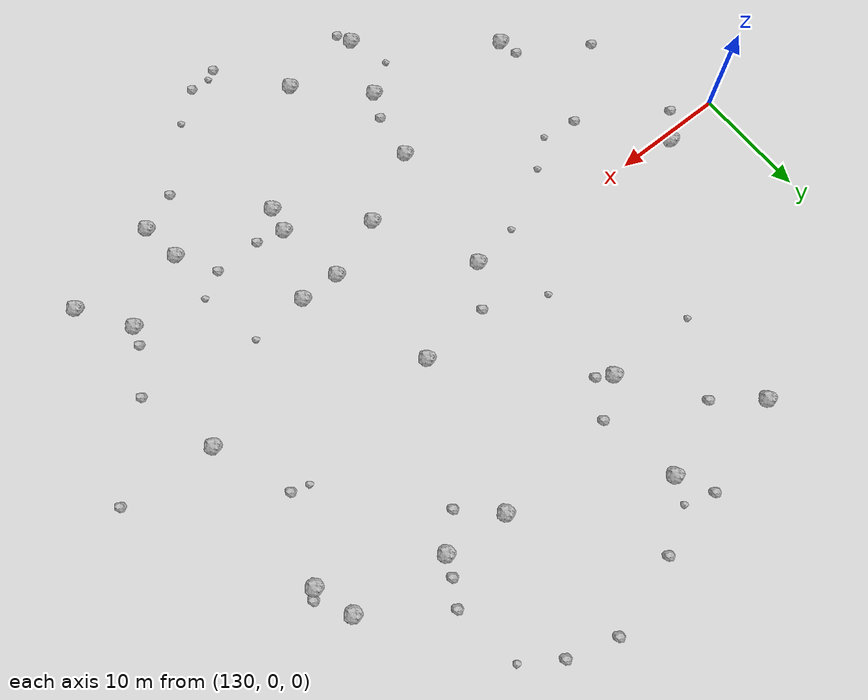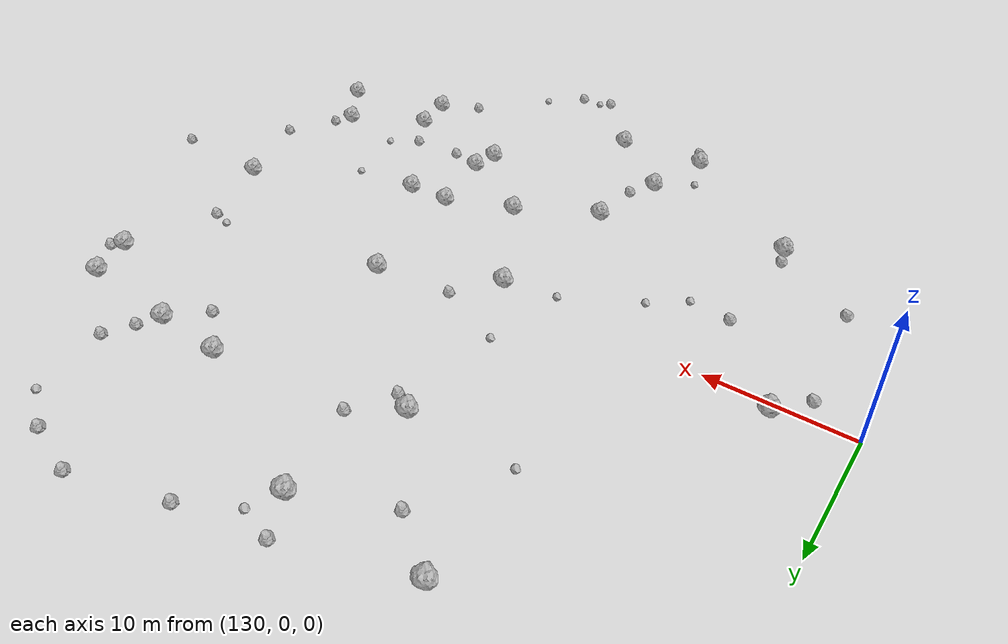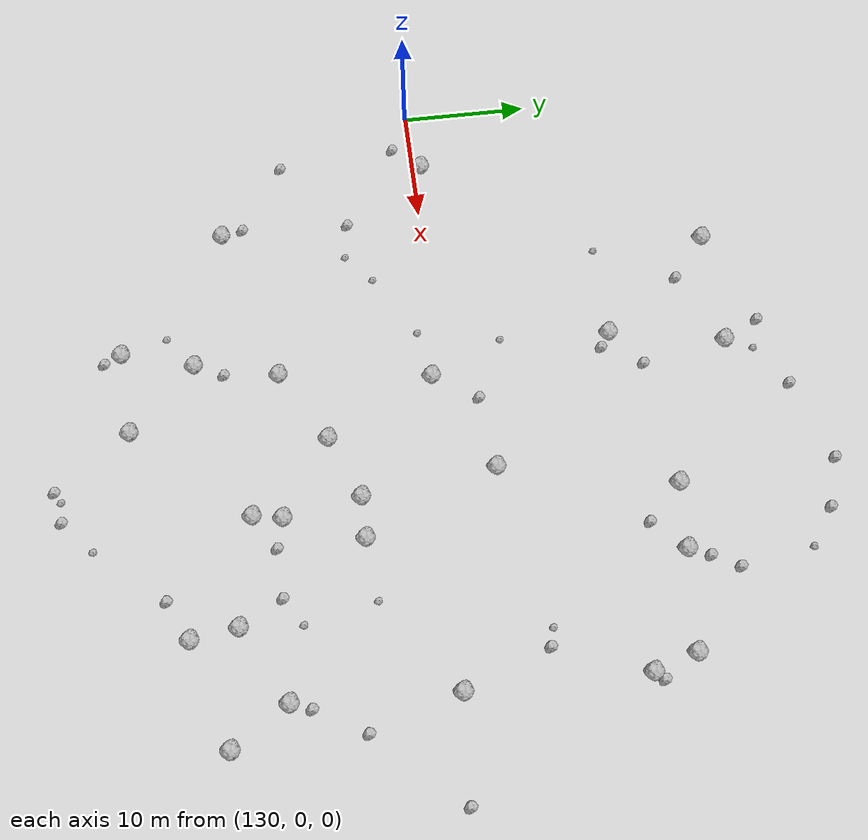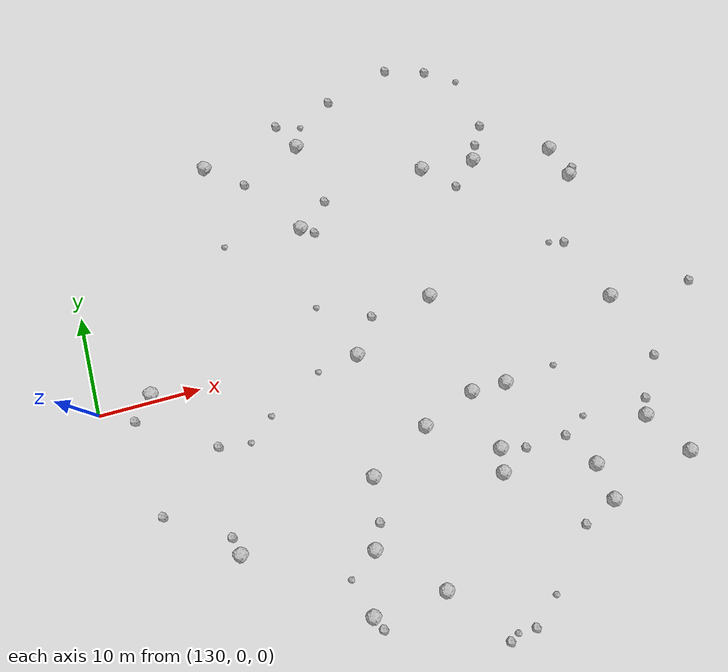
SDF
<sdf version="1.6">
 <world name="default">
  <include><uri>model://sun</uri></include>
  <model name="rock1_4_2">
   <include><uri>model://rock1</uri><pose>166.5630072665513 -13.079276418080276 0.5 0 0 0</pose></include>
  </model>
  <model name="rock1_4_3">
   <include><uri>model://rock1</uri><pose>140.56834922653667 -16.158866072498483 0.5 0 0 0</pose></include>
  </model>
  <model name="rock1_4_4">
   <include><uri>model://rock1</uri><pose>168.91071787296883 -7.137942485076255 0.5 0 0 0</pose></include>
  </model>
  <model name="rock1_4_5">
   <include><uri>model://rock1</uri><pose>174.89400930639476 -16.817843921239472 0.5 0 0 0</pose></include>
  </model>
  <model name="rock1_4_6">
   <include><uri>model://rock1</uri><pose>152.63541614075245 -18.97747056050652 0.5 0 0 0</pose></include>
  </model>
  <model name="rock1_4_7">
   <include><uri>model://rock1</uri><pose>145.29365056669974 22.498672437877623 0.5 0 0 0</pose></include>
  </model>
  <model name="rock1_4_8">
   <include><uri>model://rock1</uri><pose>175.44288637745743 -20.36355261090216 0.5 0 0 0</pose></include>
  </model>
  <model name="rock1_4_9">
   <include><uri>model://rock1</uri><pose>180.98657384970176 -13.661822282428403 0.5 0 0 0</pose></include>
  </model>
  <model name="rock1_4_10">
   <include><uri>model://rock1</uri><pose>165.48063055884876 -7.136984117840925 0.5 0 0 0</pose></include>
  </model>
  <model name="rock1_4_11">
   <include><uri>model://rock1</uri><pose>155.13577216665604 22.442489114119454 0.5 0 0 0</pose></include>
  </model>
  <model name="rock1_4_12">
   <include><uri>model://rock1</uri><pose>166.15826284284765 -15.322449395754834 0.5 0 0 0</pose></include>
  </model>
  <model name="rock1_4_13">
   <include><uri>model://rock1</uri><pose>155.6898528324413 -0.7520256396828486 0.5 0 0 0</pose></include>
  </model>
  <model name="rock1_4_14">
   <include><uri>model://rock1</uri><pose>164.17049573108068 3.1894222953283133 0.5 0 0 0</pose></include>
  </model>
  <model name="rock1_4_15">
   <include><uri>model://rock1</uri><pose>135.42149149534436 0.6705530813060321 0.5 0 0 0</pose></include>
  </model>
  <model name="rock1_4_16">
   <include><uri>model://rock1</uri><pose>158.02272643480867 -24.12296321911017 0.5 0 0 0</pose></include>
  </model>
  <model name="rock1_4_17">
   <include><uri>model://rock1</uri><pose>150.9934369263861 -24.563707882462186 0.5 0 0 0</pose></include>
  </model>
  <model name="rock1_4_18">
   <include><uri>model://rock1</uri><pose>160.2475247718266 -9.19374458919702 0.5 0 0 0</pose></include>
  </model>
  <model name="rock1_4_19">
   <include><uri>model://rock1</uri><pose>181.5736555263539 -1.4863561609047515 0.5 0 0 0</pose></include>
  </model>
  <model name="rock1_4_20">
   <include><uri>model://rock1</uri><pose>167.12595949109334 16.587744518566844 0.5 0 0 0</pose></include>
  </model>
  <model name="rock1_4_21">
   <include><uri>model://rock1</uri><pose>154.20569799973822 -12.522556110720767 0.5 0 0 0</pose></include>
  </model>
  <model name="rock1_4_22">
   <include><uri>model://rock1</uri><pose>183.89886762327959 -17.949325484788456 0.5 0 0 0</pose></include>
  </model>
  <model name="rock1_4_23">
   <include><uri>model://rock1</uri><pose>153.4164302906874 13.497761531913824 0.5 0 0 0</pose></include>
  </model>
  <model name="rock1_4_24">
   <include><uri>model://rock1</uri><pose>180.63099220064464 15.352190946679578 0.5 0 0 0</pose></include>
  </model>
  <model name="rock1_4_25">
   <include><uri>model://rock1</uri><pose>172.56150771840635 16.17404543910672 0.5 0 0 0</pose></include>
  </model>
  <model name="rock1_4_26">
   <include><uri>model://rock1</uri><pose>181.71690391804822 12.014889700642811 0.5 0 0 0</pose></include>
  </model>
  <model name="rock2_4_0">
   <include><uri>model://rock2</uri><pose>159.5608978548677 26.654744361003274 0.3 0 0 0</pose></include>
  </model>
  <model name="rock2_4_1">
   <include><uri>model://rock2</uri><pose>153.53734373882415 25.34655612420547 0.3 0 0 0</pose></include>
  </model>
  <model name="rock2_4_2">
   <include><uri>model://rock2</uri><pose>134.2268121161367 -10.952626449911971 0.3 0 0 0</pose></include>
  </model>
  <model name="rock2_4_3">
   <include><uri>model://rock2</uri><pose>133.35818518565412 -1.4953043359957796 0.3 0 0 0</pose></include>
  </model>
  <model name="rock2_4_4">
   <include><uri>model://rock2</uri><pose>181.53502679946294 -12.098988187889944 0.3 0 0 0</pose></include>
  </model>
  <model name="rock2_4_5">
   <include><uri>model://rock2</uri><pose>182.2997752515967 12.734898774759444 0.3 0 0 0</pose></include>
  </model>
  <model name="rock2_4_6">
   <include><uri>model://rock2</uri><pose>140.0921640319749 -14.449597649349977 0.3 0 0 0</pose></include>
  </model>
  <model name="rock2_4_7">
   <include><uri>model://rock2</uri><pose>140.61169356478135 -5.931658162905787 0.3 0 0 0</pose></include>
  </model>
  <model name="rock2_4_8">
   <include><uri>model://rock2</uri><pose>183.77478591312118 -8.322843649198678 0.3 0 0 0</pose></include>
  </model>
  <model name="rock2_4_9">
   <include><uri>model://rock2</uri><pose>189.74203621007968 -2.000173430003123 0.3 0 0 0</pose></include>
  </model>
  <model name="rock2_4_10">
   <include><uri>model://rock2</uri><pose>172.93052881051946 -13.52308831540562 0.3 0 0 0</pose></include>
  </model>
  <model name="rock2_4_11">
   <include><uri>model://rock2</uri><pose>153.663100802888 -16.712678080962576 0.3 0 0 0</pose></include>
  </model>
  <model name="rock2_4_12">
   <include><uri>model://rock2</uri><pose>166.35898298889114 28.67836374918818 0.3 0 0 0</pose></include>
  </model>
  <model name="rock2_4_13">
   <include><uri>model://rock2</uri><pose>173.23560943825242 17.810763127729963 0.3 0 0 0</pose></include>
  </model>
  <model name="rock2_4_14">
   <include><uri>model://rock2</uri><pose>148.872771652947 19.71501977251266 0.3 0 0 0</pose></include>
  </model>
  <model name="rock2_4_15">
   <include><uri>model://rock2</uri><pose>164.9490878331893 -29.316567497542486 0.3 0 0 0</pose></include>
  </model>
  <model name="rock2_4_16">
   <include><uri>model://rock2</uri><pose>170.03122751186532 13.864355954301146 0.3 0 0 0</pose></include>
  </model>
  <model name="rock2_4_17">
   <include><uri>model://rock2</uri><pose>172.18429727409284 -21.875443124451788 0.3 0 0 0</pose></include>
  </model>
  <model name="rock2_4_18">
   <include><uri>model://rock2</uri><pose>170.4216601348277 27.430129834363207 0.3 0 0 0</pose></include>
  </model>
  <model name="rock2_4_19">
   <include><uri>model://rock2</uri><pose>156.4530962774487 15.782460176285348 0.3 0 0 0</pose></include>
  </model>
  <model name="rock2_4_20">
   <include><uri>model://rock2</uri><pose>162.36729094002877 -29.83130429608407 0.3 0 0 0</pose></include>
  </model>
  <model name="rock2_4_21">
   <include><uri>model://rock2</uri><pose>154.62367325621256 12.743919389714797 0.3 0 0 0</pose></include>
  </model>
  <model name="rock2_4_22">
   <include><uri>model://rock2</uri><pose>168.9276613439473 -13.647309096777896 0.3 0 0 0</pose></include>
  </model>
  <model name="rock2_4_23">
   <include><uri>model://rock2</uri><pose>178.91616789787957 5.124326677552887 0.3 0 0 0</pose></include>
  </model>
  <model name="rock2_4_24">
   <include><uri>model://rock2</uri><pose>174.37637350959147 19.823445145454087 0.3 0 0 0</pose></include>
  </model>
  <model name="rock2_4_25">
   <include><uri>model://rock2</uri><pose>158.0001920716701 2.6656714322354844 0.3 0 0 0</pose></include>
  </model>
  <model name="rock2_4_26">
   <include><uri>model://rock2</uri><pose>151.58420828773052 -25.881094311357785 0.3 0 0 0</pose></include>
  </model>
  <model name="rock3_4_0">
   <include><uri>model://rock3</uri><pose>155.994844792807 24.542513637283378 0.2 0 0 0</pose></include>
  </model>
  <model name="rock3_4_1">
   <include><uri>model://rock3</uri><pose>146.1271896499089 -4.4133396476302735 0.2 0 0 0</pose></include>
  </model>
  <model name="rock3_4_2">
   <include><uri>model://rock3</uri><pose>177.4291481500345 5.491415707941968 0.2 0 0 0</pose></include>
  </model>
  <model name="rock3_4_3">
   <include><uri>model://rock3</uri><pose>151.52837705120774 -1.4179334391324936 0.2 0 0 0</pose></include>
  </model>
  <model name="rock3_4_4">
   <include><uri>model://rock3</uri><pose>173.38922123555525 25.462770061995833 0.2 0 0 0</pose></include>
  </model>
  <model name="rock3_4_5">
   <include><uri>model://rock3</uri><pose>167.56706741880328 -27.106740664019963 0.2 0 0 0</pose></include>
  </model>
  <model name="rock3_4_6">
   <include><uri>model://rock3</uri><pose>145.41708499678913 13.581657707892106 0.2 0 0 0</pose></include>
  </model>
  <model name="rock3_4_7">
   <include><uri>model://rock3</uri><pose>143.66934464052207 -6.406235658584102 0.2 0 0 0</pose></include>
  </model>
  <model name="rock3_4_8">
   <include><uri>model://rock3</uri><pose>173.90122129863613 -6.726906756488788 0.2 0 0 0</pose></include>
  </model>
  <model name="rock3_4_9">
   <include><uri>model://rock3</uri><pose>149.8073547466725 -20.998213931113128 0.2 0 0 0</pose></include>
  </model>
  <model name="rock3_4_10">
   <include><uri>model://rock3</uri><pose>163.21460494928243 -29.37054646059795 0.2 0 0 0</pose></include>
  </model>
  <model name="rock3_4_11">
   <include><uri>model://rock3</uri><pose>152.90393633775466 4.962676738290796 0.2 0 0 0</pose></include>
  </model>
  <model name="rock3_4_12">
   <include><uri>model://rock3</uri><pose>175.12358361407476 -12.211434763316042 0.2 0 0 0</pose></include>
  </model>
 </world>
</sdf>
